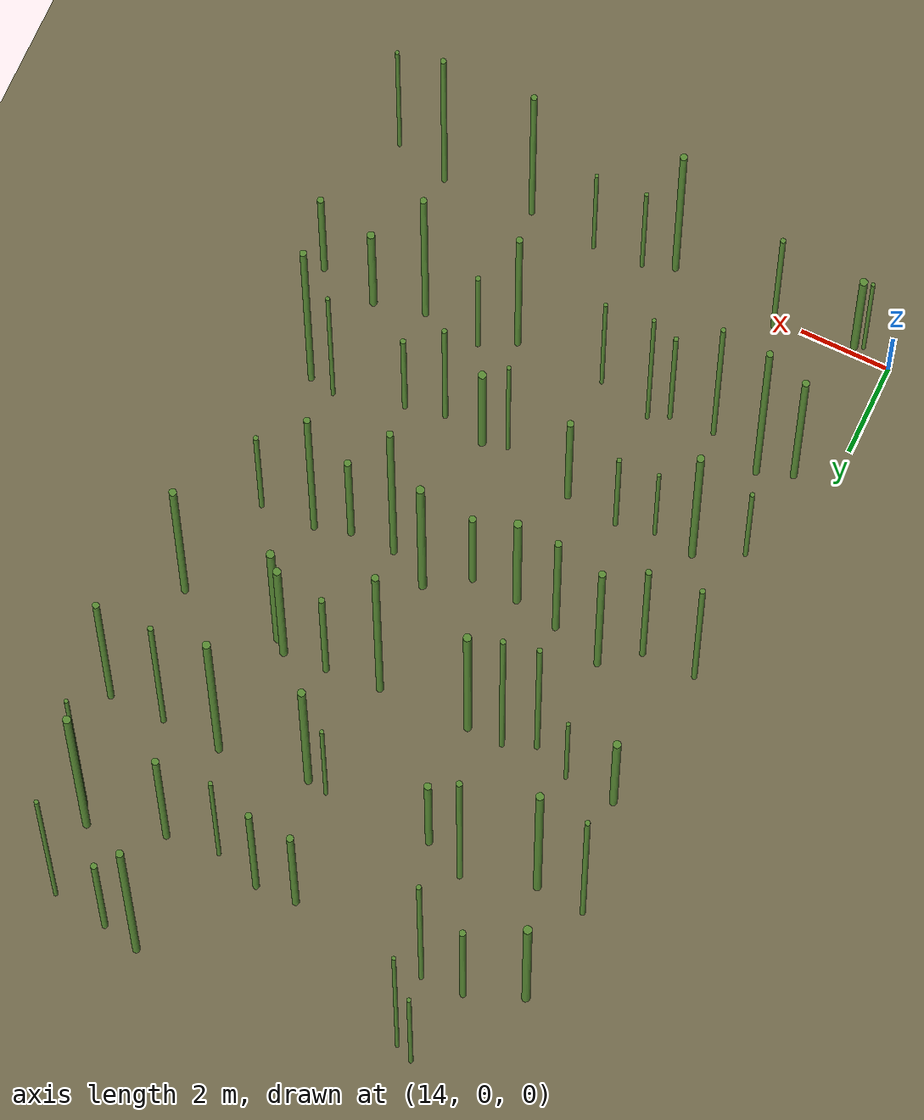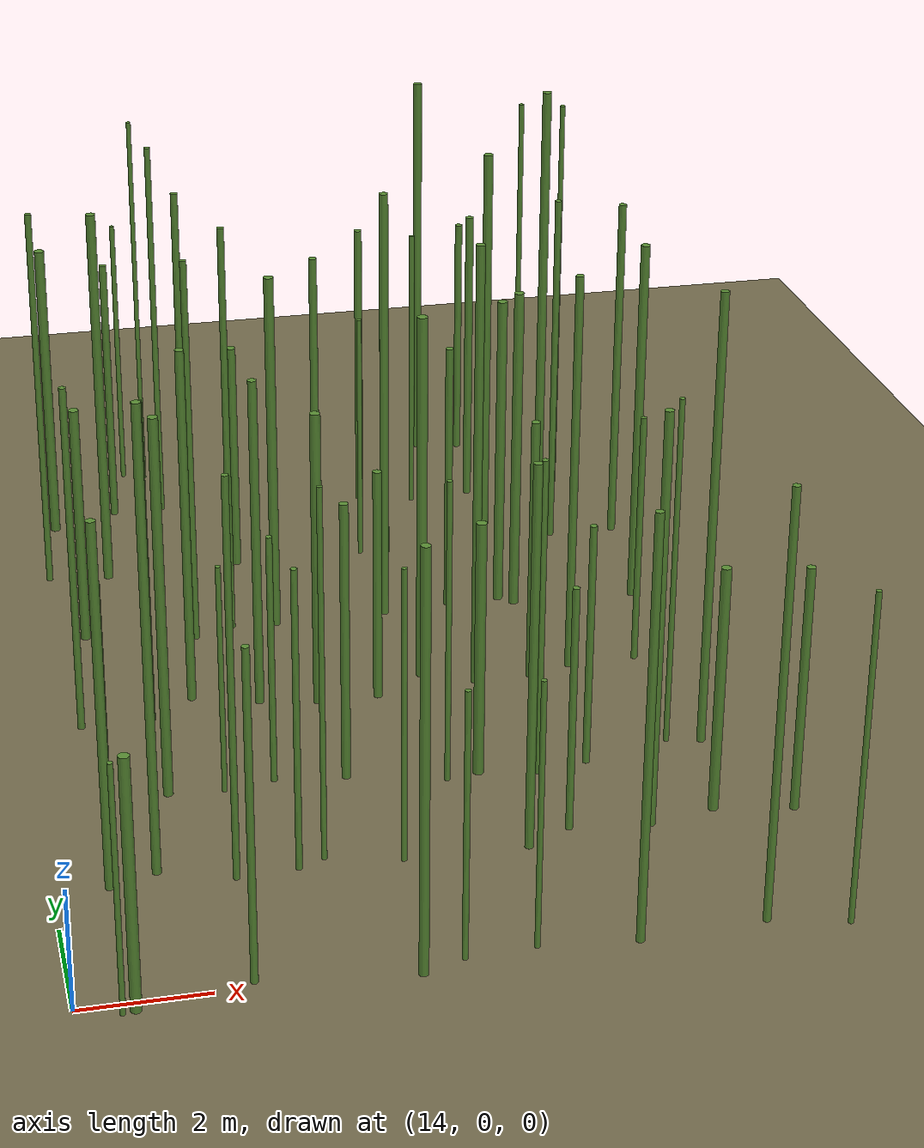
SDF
<sdf version="1.9">
 <world name="bamboo_field">
  <model name="ground_plane">
   <static>true</static>
   <link name="link">
    <collision name="collision">
     <geometry><plane><normal>0 0 1</normal><size>80.0 80.0</size></plane></geometry>
    </collision>
    <visual name="visual">
     <geometry><plane><normal>0 0 1</normal><size>80.0 80.0</size></plane></geometry>
     <material><diffuse>0.45 0.42 0.30 1</diffuse></material>
    </visual>
   </link>
  </model>
  <model name="bamboo_1054">
   <static>true</static>
   <pose>14.675035441849522 -0.22238168241106152 2.0362611913500244 0 0 0</pose>
   <link name="link">
    <collision name="collision">
     <geometry>
      <cylinder><radius>0.042352466806494155</radius><length>4.072522382700049</length></cylinder>
     </geometry>
    </collision>
    <visual name="visual">
     <geometry>
      <cylinder><radius>0.042352466806494155</radius><length>4.072522382700049</length></cylinder>
     </geometry>
     <material><diffuse>0.35 0.55 0.20 1</diffuse><specular>0.1 0.1 0.1 1</specular></material>
    </visual>
   </link>
  </model>
  <model name="bamboo_1055">
   <static>true</static>
   <pose>14.86640926337431 -0.17087807101086705 2.063940015536778 0 0 0</pose>
   <link name="link">
    <collision name="collision">
     <geometry>
      <cylinder><radius>0.08472287353257793</radius><length>4.127880031073556</length></cylinder>
     </geometry>
    </collision>
    <visual name="visual">
     <geometry>
      <cylinder><radius>0.08472287353257793</radius><length>4.127880031073556</length></cylinder>
     </geometry>
     <material><diffuse>0.35 0.55 0.20 1</diffuse><specular>0.1 0.1 0.1 1</specular></material>
    </visual>
   </link>
  </model>
  <model name="bamboo_1056">
   <static>true</static>
   <pose>16.59118022796607 0.14208715821829365 2.710481953164546 0 0 0</pose>
   <link name="link">
    <collision name="collision">
     <geometry>
      <cylinder><radius>0.0570162106994114</radius><length>5.420963906329092</length></cylinder>
     </geometry>
    </collision>
    <visual name="visual">
     <geometry>
      <cylinder><radius>0.0570162106994114</radius><length>5.420963906329092</length></cylinder>
     </geometry>
     <material><diffuse>0.35 0.55 0.20 1</diffuse><specular>0.1 0.1 0.1 1</specular></material>
    </visual>
   </link>
  </model>
  <model name="bamboo_1057">
   <static>true</static>
   <pose>18.990199973191725 -0.16583370027384847 3.4128098346355857 0 0 0</pose>
   <link name="link">
    <collision name="collision">
     <geometry>
      <cylinder><radius>0.07347429450755641</radius><length>6.8256196692711715</length></cylinder>
     </geometry>
    </collision>
    <visual name="visual">
     <geometry>
      <cylinder><radius>0.07347429450755641</radius><length>6.8256196692711715</length></cylinder>
     </geometry>
     <material><diffuse>0.35 0.55 0.20 1</diffuse><specular>0.1 0.1 0.1 1</specular></material>
    </visual>
   </link>
  </model>
  <model name="bamboo_1058">
   <static>true</static>
   <pose>19.651812540865578 0.075196985639568 2.2117837187894045 0 0 0</pose>
   <link name="link">
    <collision name="collision">
     <geometry>
      <cylinder><radius>0.045546542247630564</radius><length>4.423567437578809</length></cylinder>
     </geometry>
    </collision>
    <visual name="visual">
     <geometry>
      <cylinder><radius>0.045546542247630564</radius><length>4.423567437578809</length></cylinder>
     </geometry>
     <material><diffuse>0.35 0.55 0.20 1</diffuse><specular>0.1 0.1 0.1 1</specular></material>
    </visual>
   </link>
  </model>
  <model name="bamboo_1059">
   <static>true</static>
   <pose>20.74431343908246 0.1372962371102766 2.2108221675015436 0 0 0</pose>
   <link name="link">
    <collision name="collision">
     <geometry>
      <cylinder><radius>0.04209847186032896</radius><length>4.421644335003087</length></cylinder>
     </geometry>
    </collision>
    <visual name="visual">
     <geometry>
      <cylinder><radius>0.04209847186032896</radius><length>4.421644335003087</length></cylinder>
     </geometry>
     <material><diffuse>0.35 0.55 0.20 1</diffuse><specular>0.1 0.1 0.1 1</specular></material>
    </visual>
   </link>
  </model>
  <model name="bamboo_1060">
   <static>true</static>
   <pose>22.254114628335834 -0.019347315142034804 3.4651037882341846 0 0 0</pose>
   <link name="link">
    <collision name="collision">
     <geometry>
      <cylinder><radius>0.06529483083575628</radius><length>6.930207576468369</length></cylinder>
     </geometry>
    </collision>
    <visual name="visual">
     <geometry>
      <cylinder><radius>0.06529483083575628</radius><length>6.930207576468369</length></cylinder>
     </geometry>
     <material><diffuse>0.35 0.55 0.20 1</diffuse><specular>0.1 0.1 0.1 1</specular></material>
    </visual>
   </link>
  </model>
  <model name="bamboo_1061">
   <static>true</static>
   <pose>24.22961095311927 0.09408925619486419 3.5380663276700313 0 0 0</pose>
   <link name="link">
    <collision name="collision">
     <geometry>
      <cylinder><radius>0.060787491935945785</radius><length>7.0761326553400625</length></cylinder>
     </geometry>
    </collision>
    <visual name="visual">
     <geometry>
      <cylinder><radius>0.060787491935945785</radius><length>7.0761326553400625</length></cylinder>
     </geometry>
     <material><diffuse>0.35 0.55 0.20 1</diffuse><specular>0.1 0.1 0.1 1</specular></material>
    </visual>
   </link>
  </model>
  <model name="bamboo_1062">
   <static>true</static>
   <pose>25.422809384557777 -0.21986201029473135 2.744872714805599 0 0 0</pose>
   <link name="link">
    <collision name="collision">
     <geometry>
      <cylinder><radius>0.04426169308499084</radius><length>5.489745429611198</length></cylinder>
     </geometry>
    </collision>
    <visual name="visual">
     <geometry>
      <cylinder><radius>0.04426169308499084</radius><length>5.489745429611198</length></cylinder>
     </geometry>
     <material><diffuse>0.35 0.55 0.20 1</diffuse><specular>0.1 0.1 0.1 1</specular></material>
    </visual>
   </link>
  </model>
  <model name="bamboo_1122">
   <static>true</static>
   <pose>14.848293767728215 2.958294303006519 3.0658830346831163 0 0 0</pose>
   <link name="link">
    <collision name="collision">
     <geometry>
      <cylinder><radius>0.07464929076944829</radius><length>6.131766069366233</length></cylinder>
     </geometry>
    </collision>
    <visual name="visual">
     <geometry>
      <cylinder><radius>0.07464929076944829</radius><length>6.131766069366233</length></cylinder>
     </geometry>
     <material><diffuse>0.35 0.55 0.20 1</diffuse><specular>0.1 0.1 0.1 1</specular></material>
    </visual>
   </link>
  </model>
  <model name="bamboo_1123">
   <static>true</static>
   <pose>15.589123424910369 3.2233446494699023 3.8861484475438304 0 0 0</pose>
   <link name="link">
    <collision name="collision">
     <geometry>
      <cylinder><radius>0.07204831431549033</radius><length>7.772296895087661</length></cylinder>
     </geometry>
    </collision>
    <visual name="visual">
     <geometry>
      <cylinder><radius>0.07204831431549033</radius><length>7.772296895087661</length></cylinder>
     </geometry>
     <material><diffuse>0.35 0.55 0.20 1</diffuse><specular>0.1 0.1 0.1 1</specular></material>
    </visual>
   </link>
  </model>
  <model name="bamboo_1124">
   <static>true</static>
   <pose>16.75244944460679 2.8192434091030583 3.360346950863231 0 0 0</pose>
   <link name="link">
    <collision name="collision">
     <geometry>
      <cylinder><radius>0.05370177981321428</radius><length>6.720693901726462</length></cylinder>
     </geometry>
    </collision>
    <visual name="visual">
     <geometry>
      <cylinder><radius>0.05370177981321428</radius><length>6.720693901726462</length></cylinder>
     </geometry>
     <material><diffuse>0.35 0.55 0.20 1</diffuse><specular>0.1 0.1 0.1 1</specular></material>
    </visual>
   </link>
  </model>
  <model name="bamboo_1125">
   <static>true</static>
   <pose>17.723490869500907 2.8804161668425543 2.555866061425082 0 0 0</pose>
   <link name="link">
    <collision name="collision">
     <geometry>
      <cylinder><radius>0.051227410304160656</radius><length>5.111732122850164</length></cylinder>
     </geometry>
    </collision>
    <visual name="visual">
     <geometry>
      <cylinder><radius>0.051227410304160656</radius><length>5.111732122850164</length></cylinder>
     </geometry>
     <material><diffuse>0.35 0.55 0.20 1</diffuse><specular>0.1 0.1 0.1 1</specular></material>
    </visual>
   </link>
  </model>
  <model name="bamboo_1126">
   <static>true</static>
   <pose>18.149271491992454 3.082424044196656 3.143639233822717 0 0 0</pose>
   <link name="link">
    <collision name="collision">
     <geometry>
      <cylinder><radius>0.04409044507149549</radius><length>6.287278467645434</length></cylinder>
     </geometry>
    </collision>
    <visual name="visual">
     <geometry>
      <cylinder><radius>0.04409044507149549</radius><length>6.287278467645434</length></cylinder>
     </geometry>
     <material><diffuse>0.35 0.55 0.20 1</diffuse><specular>0.1 0.1 0.1 1</specular></material>
    </visual>
   </link>
  </model>
  <model name="bamboo_1127">
   <static>true</static>
   <pose>19.337886481907137 2.7837772192858017 2.499968323064995 0 0 0</pose>
   <link name="link">
    <collision name="collision">
     <geometry>
      <cylinder><radius>0.043722018345071084</radius><length>4.99993664612999</length></cylinder>
     </geometry>
    </collision>
    <visual name="visual">
     <geometry>
      <cylinder><radius>0.043722018345071084</radius><length>4.99993664612999</length></cylinder>
     </geometry>
     <material><diffuse>0.35 0.55 0.20 1</diffuse><specular>0.1 0.1 0.1 1</specular></material>
    </visual>
   </link>
  </model>
  <model name="bamboo_1128">
   <static>true</static>
   <pose>21.299145597251393 2.741499748525878 3.2525942166903734 0 0 0</pose>
   <link name="link">
    <collision name="collision">
     <geometry>
      <cylinder><radius>0.06962653852895681</radius><length>6.505188433380747</length></cylinder>
     </geometry>
    </collision>
    <visual name="visual">
     <geometry>
      <cylinder><radius>0.06962653852895681</radius><length>6.505188433380747</length></cylinder>
     </geometry>
     <material><diffuse>0.35 0.55 0.20 1</diffuse><specular>0.1 0.1 0.1 1</specular></material>
    </visual>
   </link>
  </model>
  <model name="bamboo_1129">
   <static>true</static>
   <pose>22.041782001921035 3.122090902570097 2.108865720356014 0 0 0</pose>
   <link name="link">
    <collision name="collision">
     <geometry>
      <cylinder><radius>0.05704009839613643</radius><length>4.217731440712028</length></cylinder>
     </geometry>
    </collision>
    <visual name="visual">
     <geometry>
      <cylinder><radius>0.05704009839613643</radius><length>4.217731440712028</length></cylinder>
     </geometry>
     <material><diffuse>0.35 0.55 0.20 1</diffuse><specular>0.1 0.1 0.1 1</specular></material>
    </visual>
   </link>
  </model>
  <model name="bamboo_1130">
   <static>true</static>
   <pose>23.323433244578872 2.9714672474122468 3.528197140927177 0 0 0</pose>
   <link name="link">
    <collision name="collision">
     <geometry>
      <cylinder><radius>0.07097832778041417</radius><length>7.056394281854354</length></cylinder>
     </geometry>
    </collision>
    <visual name="visual">
     <geometry>
      <cylinder><radius>0.07097832778041417</radius><length>7.056394281854354</length></cylinder>
     </geometry>
     <material><diffuse>0.35 0.55 0.20 1</diffuse><specular>0.1 0.1 0.1 1</specular></material>
    </visual>
   </link>
  </model>
  <model name="bamboo_1131">
   <static>true</static>
   <pose>24.42251551761251 3.209594170364575 2.1300564375914073 0 0 0</pose>
   <link name="link">
    <collision name="collision">
     <geometry>
      <cylinder><radius>0.08238460723063486</radius><length>4.260112875182815</length></cylinder>
     </geometry>
    </collision>
    <visual name="visual">
     <geometry>
      <cylinder><radius>0.08238460723063486</radius><length>4.260112875182815</length></cylinder>
     </geometry>
     <material><diffuse>0.35 0.55 0.20 1</diffuse><specular>0.1 0.1 0.1 1</specular></material>
    </visual>
   </link>
  </model>
  <model name="bamboo_1132">
   <static>true</static>
   <pose>25.68430294570522 2.9576937550548417 2.131580518213325 0 0 0</pose>
   <link name="link">
    <collision name="collision">
     <geometry>
      <cylinder><radius>0.07130926058882436</radius><length>4.26316103642665</length></cylinder>
     </geometry>
    </collision>
    <visual name="visual">
     <geometry>
      <cylinder><radius>0.07130926058882436</radius><length>4.26316103642665</length></cylinder>
     </geometry>
     <material><diffuse>0.35 0.55 0.20 1</diffuse><specular>0.1 0.1 0.1 1</specular></material>
    </visual>
   </link>
  </model>
  <model name="bamboo_1193">
   <static>true</static>
   <pose>15.049297759271537 4.95079533928831 2.0688896908266496 0 0 0</pose>
   <link name="link">
    <collision name="collision">
     <geometry>
      <cylinder><radius>0.05083362166375379</radius><length>4.137779381653299</length></cylinder>
     </geometry>
    </collision>
    <visual name="visual">
     <geometry>
      <cylinder><radius>0.05083362166375379</radius><length>4.137779381653299</length></cylinder>
     </geometry>
     <material><diffuse>0.35 0.55 0.20 1</diffuse><specular>0.1 0.1 0.1 1</specular></material>
    </visual>
   </link>
  </model>
  <model name="bamboo_1194">
   <static>true</static>
   <pose>16.056951116423594 5.42738570567057 3.282024378516375 0 0 0</pose>
   <link name="link">
    <collision name="collision">
     <geometry>
      <cylinder><radius>0.08057559129702838</radius><length>6.56404875703275</length></cylinder>
     </geometry>
    </collision>
    <visual name="visual">
     <geometry>
      <cylinder><radius>0.08057559129702838</radius><length>6.56404875703275</length></cylinder>
     </geometry>
     <material><diffuse>0.35 0.55 0.20 1</diffuse><specular>0.1 0.1 0.1 1</specular></material>
    </visual>
   </link>
  </model>
  <model name="bamboo_1195">
   <static>true</static>
   <pose>16.95239795544539 5.336458756506756 2.0093314654926164 0 0 0</pose>
   <link name="link">
    <collision name="collision">
     <geometry>
      <cylinder><radius>0.042620762809442485</radius><length>4.018662930985233</length></cylinder>
     </geometry>
    </collision>
    <visual name="visual">
     <geometry>
      <cylinder><radius>0.042620762809442485</radius><length>4.018662930985233</length></cylinder>
     </geometry>
     <material><diffuse>0.35 0.55 0.20 1</diffuse><specular>0.1 0.1 0.1 1</specular></material>
    </visual>
   </link>
  </model>
  <model name="bamboo_1196">
   <static>true</static>
   <pose>17.778417301081046 5.491982227064798 2.182772860169983 0 0 0</pose>
   <link name="link">
    <collision name="collision">
     <geometry>
      <cylinder><radius>0.05192701615392628</radius><length>4.365545720339966</length></cylinder>
     </geometry>
    </collision>
    <visual name="visual">
     <geometry>
      <cylinder><radius>0.05192701615392628</radius><length>4.365545720339966</length></cylinder>
     </geometry>
     <material><diffuse>0.35 0.55 0.20 1</diffuse><specular>0.1 0.1 0.1 1</specular></material>
    </visual>
   </link>
  </model>
  <model name="bamboo_1197">
   <static>true</static>
   <pose>18.935686287010178 5.3573257051974155 2.4411357039026207 0 0 0</pose>
   <link name="link">
    <collision name="collision">
     <geometry>
      <cylinder><radius>0.07344747277467381</radius><length>4.882271407805241</length></cylinder>
     </geometry>
    </collision>
    <visual name="visual">
     <geometry>
      <cylinder><radius>0.07344747277467381</radius><length>4.882271407805241</length></cylinder>
     </geometry>
     <material><diffuse>0.35 0.55 0.20 1</diffuse><specular>0.1 0.1 0.1 1</specular></material>
    </visual>
   </link>
  </model>
  <model name="bamboo_1198">
   <static>true</static>
   <pose>20.5105230973485 4.932162064761644 2.654282932321423 0 0 0</pose>
   <link name="link">
    <collision name="collision">
     <geometry>
      <cylinder><radius>0.04538419142947507</radius><length>5.308565864642846</length></cylinder>
     </geometry>
    </collision>
    <visual name="visual">
     <geometry>
      <cylinder><radius>0.04538419142947507</radius><length>5.308565864642846</length></cylinder>
     </geometry>
     <material><diffuse>0.35 0.55 0.20 1</diffuse><specular>0.1 0.1 0.1 1</specular></material>
    </visual>
   </link>
  </model>
  <model name="bamboo_1199">
   <static>true</static>
   <pose>21.0495789321269 5.049082217731944 2.2416079227985164 0 0 0</pose>
   <link name="link">
    <collision name="collision">
     <geometry>
      <cylinder><radius>0.0869461613997371</radius><length>4.483215845597033</length></cylinder>
     </geometry>
    </collision>
    <visual name="visual">
     <geometry>
      <cylinder><radius>0.0869461613997371</radius><length>4.483215845597033</length></cylinder>
     </geometry>
     <material><diffuse>0.35 0.55 0.20 1</diffuse><specular>0.1 0.1 0.1 1</specular></material>
    </visual>
   </link>
  </model>
  <model name="bamboo_1200">
   <static>true</static>
   <pose>21.990524716769784 4.8456901884332195 2.7783733191008557 0 0 0</pose>
   <link name="link">
    <collision name="collision">
     <geometry>
      <cylinder><radius>0.05581201106756231</radius><length>5.556746638201711</length></cylinder>
     </geometry>
    </collision>
    <visual name="visual">
     <geometry>
      <cylinder><radius>0.05581201106756231</radius><length>5.556746638201711</length></cylinder>
     </geometry>
     <material><diffuse>0.35 0.55 0.20 1</diffuse><specular>0.1 0.1 0.1 1</specular></material>
    </visual>
   </link>
  </model>
  <model name="bamboo_1201">
   <static>true</static>
   <pose>22.848408119810877 5.010552763641678 2.1346625370600827 0 0 0</pose>
   <link name="link">
    <collision name="collision">
     <geometry>
      <cylinder><radius>0.058448998050368926</radius><length>4.269325074120165</length></cylinder>
     </geometry>
    </collision>
    <visual name="visual">
     <geometry>
      <cylinder><radius>0.058448998050368926</radius><length>4.269325074120165</length></cylinder>
     </geometry>
     <material><diffuse>0.35 0.55 0.20 1</diffuse><specular>0.1 0.1 0.1 1</specular></material>
    </visual>
   </link>
  </model>
  <model name="bamboo_1202">
   <static>true</static>
   <pose>24.32833506103893 5.394804313192285 3.0723630605825747 0 0 0</pose>
   <link name="link">
    <collision name="collision">
     <geometry>
      <cylinder><radius>0.04509067949374434</radius><length>6.144726121165149</length></cylinder>
     </geometry>
    </collision>
    <visual name="visual">
     <geometry>
      <cylinder><radius>0.04509067949374434</radius><length>6.144726121165149</length></cylinder>
     </geometry>
     <material><diffuse>0.35 0.55 0.20 1</diffuse><specular>0.1 0.1 0.1 1</specular></material>
    </visual>
   </link>
  </model>
  <model name="bamboo_1203">
   <static>true</static>
   <pose>24.89096756013186 5.274009155258631 3.9628317897151994 0 0 0</pose>
   <link name="link">
    <collision name="collision">
     <geometry>
      <cylinder><radius>0.06999335725767697</radius><length>7.925663579430399</length></cylinder>
     </geometry>
    </collision>
    <visual name="visual">
     <geometry>
      <cylinder><radius>0.06999335725767697</radius><length>7.925663579430399</length></cylinder>
     </geometry>
     <material><diffuse>0.35 0.55 0.20 1</diffuse><specular>0.1 0.1 0.1 1</specular></material>
    </visual>
   </link>
  </model>
  <model name="bamboo_1257">
   <static>true</static>
   <pose>14.916359963971969 7.815151336982459 3.0765858866626328 0 0 0</pose>
   <link name="link">
    <collision name="collision">
     <geometry>
      <cylinder><radius>0.059765619191970126</radius><length>6.1531717733252655</length></cylinder>
     </geometry>
    </collision>
    <visual name="visual">
     <geometry>
      <cylinder><radius>0.059765619191970126</radius><length>6.1531717733252655</length></cylinder>
     </geometry>
     <material><diffuse>0.35 0.55 0.20 1</diffuse><specular>0.1 0.1 0.1 1</specular></material>
    </visual>
   </link>
  </model>
  <model name="bamboo_1258">
   <static>true</static>
   <pose>16.092119777876402 7.815970275384086 2.91156906109192 0 0 0</pose>
   <link name="link">
    <collision name="collision">
     <geometry>
      <cylinder><radius>0.06499163325130228</radius><length>5.82313812218384</length></cylinder>
     </geometry>
    </collision>
    <visual name="visual">
     <geometry>
      <cylinder><radius>0.06499163325130228</radius><length>5.82313812218384</length></cylinder>
     </geometry>
     <material><diffuse>0.35 0.55 0.20 1</diffuse><specular>0.1 0.1 0.1 1</specular></material>
    </visual>
   </link>
  </model>
  <model name="bamboo_1259">
   <static>true</static>
   <pose>16.85345826881659 8.407095364754383 3.1977606165429853 0 0 0</pose>
   <link name="link">
    <collision name="collision">
     <geometry>
      <cylinder><radius>0.07514834047643239</radius><length>6.3955212330859705</length></cylinder>
     </geometry>
    </collision>
    <visual name="visual">
     <geometry>
      <cylinder><radius>0.07514834047643239</radius><length>6.3955212330859705</length></cylinder>
     </geometry>
     <material><diffuse>0.35 0.55 0.20 1</diffuse><specular>0.1 0.1 0.1 1</specular></material>
    </visual>
   </link>
  </model>
  <model name="bamboo_1260">
   <static>true</static>
   <pose>17.96670098820393 8.060378653993391 2.9565654938083448 0 0 0</pose>
   <link name="link">
    <collision name="collision">
     <geometry>
      <cylinder><radius>0.07532611339314726</radius><length>5.9131309876166895</length></cylinder>
     </geometry>
    </collision>
    <visual name="visual">
     <geometry>
      <cylinder><radius>0.07532611339314726</radius><length>5.9131309876166895</length></cylinder>
     </geometry>
     <material><diffuse>0.35 0.55 0.20 1</diffuse><specular>0.1 0.1 0.1 1</specular></material>
    </visual>
   </link>
  </model>
  <model name="bamboo_1261">
   <static>true</static>
   <pose>18.947795351813937 7.861289946349661 2.6662890933856698 0 0 0</pose>
   <link name="link">
    <collision name="collision">
     <geometry>
      <cylinder><radius>0.08905713975809892</radius><length>5.3325781867713395</length></cylinder>
     </geometry>
    </collision>
    <visual name="visual">
     <geometry>
      <cylinder><radius>0.08905713975809892</radius><length>5.3325781867713395</length></cylinder>
     </geometry>
     <material><diffuse>0.35 0.55 0.20 1</diffuse><specular>0.1 0.1 0.1 1</specular></material>
    </visual>
   </link>
  </model>
  <model name="bamboo_1262">
   <static>true</static>
   <pose>19.96714163381376 7.839174949037951 2.105132608460752 0 0 0</pose>
   <link name="link">
    <collision name="collision">
     <geometry>
      <cylinder><radius>0.07502037068297177</radius><length>4.210265216921504</length></cylinder>
     </geometry>
    </collision>
    <visual name="visual">
     <geometry>
      <cylinder><radius>0.07502037068297177</radius><length>4.210265216921504</length></cylinder>
     </geometry>
     <material><diffuse>0.35 0.55 0.20 1</diffuse><specular>0.1 0.1 0.1 1</specular></material>
    </visual>
   </link>
  </model>
  <model name="bamboo_1263">
   <static>true</static>
   <pose>20.850303939758668 8.407605036867713 3.3185006218012623 0 0 0</pose>
   <link name="link">
    <collision name="collision">
     <geometry>
      <cylinder><radius>0.08921947710775291</radius><length>6.6370012436025245</length></cylinder>
     </geometry>
    </collision>
    <visual name="visual">
     <geometry>
      <cylinder><radius>0.08921947710775291</radius><length>6.6370012436025245</length></cylinder>
     </geometry>
     <material><diffuse>0.35 0.55 0.20 1</diffuse><specular>0.1 0.1 0.1 1</specular></material>
    </visual>
   </link>
  </model>
  <model name="bamboo_1264">
   <static>true</static>
   <pose>21.705918260837276 7.987604952640241 3.980628599946307 0 0 0</pose>
   <link name="link">
    <collision name="collision">
     <geometry>
      <cylinder><radius>0.0738949343090585</radius><length>7.961257199892614</length></cylinder>
     </geometry>
    </collision>
    <visual name="visual">
     <geometry>
      <cylinder><radius>0.0738949343090585</radius><length>7.961257199892614</length></cylinder>
     </geometry>
     <material><diffuse>0.35 0.55 0.20 1</diffuse><specular>0.1 0.1 0.1 1</specular></material>
    </visual>
   </link>
  </model>
  <model name="bamboo_1265">
   <static>true</static>
   <pose>22.686032658991554 7.989501504024626 2.3901843533085088 0 0 0</pose>
   <link name="link">
    <collision name="collision">
     <geometry>
      <cylinder><radius>0.07481881578380756</radius><length>4.7803687066170175</length></cylinder>
     </geometry>
    </collision>
    <visual name="visual">
     <geometry>
      <cylinder><radius>0.07481881578380756</radius><length>4.7803687066170175</length></cylinder>
     </geometry>
     <material><diffuse>0.35 0.55 0.20 1</diffuse><specular>0.1 0.1 0.1 1</specular></material>
    </visual>
   </link>
  </model>
  <model name="bamboo_1266">
   <static>true</static>
   <pose>23.433883182880347 8.210572058465305 3.610143572898556 0 0 0</pose>
   <link name="link">
    <collision name="collision">
     <geometry>
      <cylinder><radius>0.06901918398807028</radius><length>7.220287145797112</length></cylinder>
     </geometry>
    </collision>
    <visual name="visual">
     <geometry>
      <cylinder><radius>0.06901918398807028</radius><length>7.220287145797112</length></cylinder>
     </geometry>
     <material><diffuse>0.35 0.55 0.20 1</diffuse><specular>0.1 0.1 0.1 1</specular></material>
    </visual>
   </link>
  </model>
  <model name="bamboo_1267">
   <static>true</static>
   <pose>24.629749293409763 8.237728548732422 2.2896457643772115 0 0 0</pose>
   <link name="link">
    <collision name="collision">
     <geometry>
      <cylinder><radius>0.05455407846615392</radius><length>4.579291528754423</length></cylinder>
     </geometry>
    </collision>
    <visual name="visual">
     <geometry>
      <cylinder><radius>0.05455407846615392</radius><length>4.579291528754423</length></cylinder>
     </geometry>
     <material><diffuse>0.35 0.55 0.20 1</diffuse><specular>0.1 0.1 0.1 1</specular></material>
    </visual>
   </link>
  </model>
  <model name="bamboo_1328">
   <static>true</static>
   <pose>15.314192716654086 10.961954492229465 2.2015233998135852 0 0 0</pose>
   <link name="link">
    <collision name="collision">
     <geometry>
      <cylinder><radius>0.085424098747418</radius><length>4.4030467996271705</length></cylinder>
     </geometry>
    </collision>
    <visual name="visual">
     <geometry>
      <cylinder><radius>0.085424098747418</radius><length>4.4030467996271705</length></cylinder>
     </geometry>
     <material><diffuse>0.35 0.55 0.20 1</diffuse><specular>0.1 0.1 0.1 1</specular></material>
    </visual>
   </link>
  </model>
  <model name="bamboo_1329">
   <static>true</static>
   <pose>16.416474970280472 10.901506751282122 2.02732316677215 0 0 0</pose>
   <link name="link">
    <collision name="collision">
     <geometry><cylinder><radius>0.04484436104779971</radius><length>4.0546463335443</length></cylinder></geometry>
    </collision>
    <visual name="visual">
     <geometry><cylinder><radius>0.04484436104779971</radius><length>4.0546463335443</length></cylinder></geometry>
     <material><diffuse>0.35 0.55 0.20 1</diffuse><specular>0.1 0.1 0.1 1</specular></material>
    </visual>
   </link>
  </model>
  <model name="bamboo_1330">
   <static>true</static>
   <pose>17.232925349534415 10.558239361713145 3.557616615130172 0 0 0</pose>
   <link name="link">
    <collision name="collision">
     <geometry>
      <cylinder><radius>0.05806924817820341</radius><length>7.115233230260344</length></cylinder>
     </geometry>
    </collision>
    <visual name="visual">
     <geometry>
      <cylinder><radius>0.05806924817820341</radius><length>7.115233230260344</length></cylinder>
     </geometry>
     <material><diffuse>0.35 0.55 0.20 1</diffuse><specular>0.1 0.1 0.1 1</specular></material>
    </visual>
   </link>
  </model>
  <model name="bamboo_1331">
   <static>true</static>
   <pose>17.91416102600012 10.817935967920844 3.774387599622689 0 0 0</pose>
   <link name="link">
    <collision name="collision">
     <geometry>
      <cylinder><radius>0.05920246783168284</radius><length>7.548775199245378</length></cylinder>
     </geometry>
    </collision>
    <visual name="visual">
     <geometry>
      <cylinder><radius>0.05920246783168284</radius><length>7.548775199245378</length></cylinder>
     </geometry>
     <material><diffuse>0.35 0.55 0.20 1</diffuse><specular>0.1 0.1 0.1 1</specular></material>
    </visual>
   </link>
  </model>
  <model name="bamboo_1332">
   <static>true</static>
   <pose>18.704266501565716 10.791386799920877 3.308710319063204 0 0 0</pose>
   <link name="link">
    <collision name="collision">
     <geometry>
      <cylinder><radius>0.08560884158463827</radius><length>6.617420638126408</length></cylinder>
     </geometry>
    </collision>
    <visual name="visual">
     <geometry>
      <cylinder><radius>0.08560884158463827</radius><length>6.617420638126408</length></cylinder>
     </geometry>
     <material><diffuse>0.35 0.55 0.20 1</diffuse><specular>0.1 0.1 0.1 1</specular></material>
    </visual>
   </link>
  </model>
  <model name="bamboo_1333">
   <static>true</static>
   <pose>20.701194228024477 10.80266338847654 3.9792892301229834 0 0 0</pose>
   <link name="link">
    <collision name="collision">
     <geometry>
      <cylinder><radius>0.0762675329574192</radius><length>7.958578460245967</length></cylinder>
     </geometry>
    </collision>
    <visual name="visual">
     <geometry>
      <cylinder><radius>0.0762675329574192</radius><length>7.958578460245967</length></cylinder>
     </geometry>
     <material><diffuse>0.35 0.55 0.20 1</diffuse><specular>0.1 0.1 0.1 1</specular></material>
    </visual>
   </link>
  </model>
  <model name="bamboo_1334">
   <static>true</static>
   <pose>21.891272028396653 10.895531568190407 2.5050510151920715 0 0 0</pose>
   <link name="link">
    <collision name="collision">
     <geometry>
      <cylinder><radius>0.06752478409990784</radius><length>5.010102030384143</length></cylinder>
     </geometry>
    </collision>
    <visual name="visual">
     <geometry>
      <cylinder><radius>0.06752478409990784</radius><length>5.010102030384143</length></cylinder>
     </geometry>
     <material><diffuse>0.35 0.55 0.20 1</diffuse><specular>0.1 0.1 0.1 1</specular></material>
    </visual>
   </link>
  </model>
  <model name="bamboo_1335">
   <static>true</static>
   <pose>22.842173339844795 10.935719187913984 2.8969644401947354 0 0 0</pose>
   <link name="link">
    <collision name="collision">
     <geometry>
      <cylinder><radius>0.08474565139636844</radius><length>5.793928880389471</length></cylinder>
     </geometry>
    </collision>
    <visual name="visual">
     <geometry>
      <cylinder><radius>0.08474565139636844</radius><length>5.793928880389471</length></cylinder>
     </geometry>
     <material><diffuse>0.35 0.55 0.20 1</diffuse><specular>0.1 0.1 0.1 1</specular></material>
    </visual>
   </link>
  </model>
  <model name="bamboo_1336">
   <static>true</static>
   <pose>23.08244105490985 10.71753232579258 3.007738855345326 0 0 0</pose>
   <link name="link">
    <collision name="collision">
     <geometry>
      <cylinder><radius>0.08656661635355808</radius><length>6.015477710690652</length></cylinder>
     </geometry>
    </collision>
    <visual name="visual">
     <geometry>
      <cylinder><radius>0.08656661635355808</radius><length>6.015477710690652</length></cylinder>
     </geometry>
     <material><diffuse>0.35 0.55 0.20 1</diffuse><specular>0.1 0.1 0.1 1</specular></material>
    </visual>
   </link>
  </model>
  <model name="bamboo_1337">
   <static>true</static>
   <pose>25.282489845205532 10.576370441832022 3.3876066683261232 0 0 0</pose>
   <link name="link">
    <collision name="collision">
     <geometry>
      <cylinder><radius>0.07971951900887266</radius><length>6.7752133366522465</length></cylinder>
     </geometry>
    </collision>
    <visual name="visual">
     <geometry>
      <cylinder><radius>0.07971951900887266</radius><length>6.7752133366522465</length></cylinder>
     </geometry>
     <material><diffuse>0.35 0.55 0.20 1</diffuse><specular>0.1 0.1 0.1 1</specular></material>
    </visual>
   </link>
  </model>
  <model name="bamboo_1390">
   <static>true</static>
   <pose>14.899362304978842 13.371137533047534 3.5707037170409794 0 0 0</pose>
   <link name="link">
    <collision name="collision">
     <geometry>
      <cylinder><radius>0.05707076446990676</radius><length>7.141407434081959</length></cylinder>
     </geometry>
    </collision>
    <visual name="visual">
     <geometry>
      <cylinder><radius>0.05707076446990676</radius><length>7.141407434081959</length></cylinder>
     </geometry>
     <material><diffuse>0.35 0.55 0.20 1</diffuse><specular>0.1 0.1 0.1 1</specular></material>
    </visual>
   </link>
  </model>
  <model name="bamboo_1391">
   <static>true</static>
   <pose>15.975772820137054 13.265090532769575 3.548350001616381 0 0 0</pose>
   <link name="link">
    <collision name="collision">
     <geometry>
      <cylinder><radius>0.08453399654953274</radius><length>7.096700003232762</length></cylinder>
     </geometry>
    </collision>
    <visual name="visual">
     <geometry>
      <cylinder><radius>0.08453399654953274</radius><length>7.096700003232762</length></cylinder>
     </geometry>
     <material><diffuse>0.35 0.55 0.20 1</diffuse><specular>0.1 0.1 0.1 1</specular></material>
    </visual>
   </link>
  </model>
  <model name="bamboo_1392">
   <static>true</static>
   <pose>17.50938005075979 13.728236320178322 3.6094528885922097 0 0 0</pose>
   <link name="link">
    <collision name="collision">
     <geometry>
      <cylinder><radius>0.06487614121191428</radius><length>7.218905777184419</length></cylinder>
     </geometry>
    </collision>
    <visual name="visual">
     <geometry>
      <cylinder><radius>0.06487614121191428</radius><length>7.218905777184419</length></cylinder>
     </geometry>
     <material><diffuse>0.35 0.55 0.20 1</diffuse><specular>0.1 0.1 0.1 1</specular></material>
    </visual>
   </link>
  </model>
  <model name="bamboo_1393">
   <static>true</static>
   <pose>18.394278502691247 13.338519174184931 2.174335367961411 0 0 0</pose>
   <link name="link">
    <collision name="collision">
     <geometry>
      <cylinder><radius>0.07907227586773591</radius><length>4.348670735922822</length></cylinder>
     </geometry>
    </collision>
    <visual name="visual">
     <geometry>
      <cylinder><radius>0.07907227586773591</radius><length>4.348670735922822</length></cylinder>
     </geometry>
     <material><diffuse>0.35 0.55 0.20 1</diffuse><specular>0.1 0.1 0.1 1</specular></material>
    </visual>
   </link>
  </model>
  <model name="bamboo_1394">
   <static>true</static>
   <pose>20.754426381613776 13.2994769537079 2.3583725051679467 0 0 0</pose>
   <link name="link">
    <collision name="collision">
     <geometry>
      <cylinder><radius>0.044461462077175794</radius><length>4.716745010335893</length></cylinder>
     </geometry>
    </collision>
    <visual name="visual">
     <geometry>
      <cylinder><radius>0.044461462077175794</radius><length>4.716745010335893</length></cylinder>
     </geometry>
     <material><diffuse>0.35 0.55 0.20 1</diffuse><specular>0.1 0.1 0.1 1</specular></material>
    </visual>
   </link>
  </model>
  <model name="bamboo_1395">
   <static>true</static>
   <pose>21.201685476379225 13.205692441053031 3.3005841661119577 0 0 0</pose>
   <link name="link">
    <collision name="collision">
     <geometry>
      <cylinder><radius>0.08383289346175096</radius><length>6.601168332223915</length></cylinder>
     </geometry>
    </collision>
    <visual name="visual">
     <geometry>
      <cylinder><radius>0.08383289346175096</radius><length>6.601168332223915</length></cylinder>
     </geometry>
     <material><diffuse>0.35 0.55 0.20 1</diffuse><specular>0.1 0.1 0.1 1</specular></material>
    </visual>
   </link>
  </model>
  <model name="bamboo_1396">
   <static>true</static>
   <pose>23.16475605495922 13.375628670181861 3.8342802327958463 0 0 0</pose>
   <link name="link">
    <collision name="collision">
     <geometry>
      <cylinder><radius>0.08285004795330893</radius><length>7.668560465591693</length></cylinder>
     </geometry>
    </collision>
    <visual name="visual">
     <geometry>
      <cylinder><radius>0.08285004795330893</radius><length>7.668560465591693</length></cylinder>
     </geometry>
     <material><diffuse>0.35 0.55 0.20 1</diffuse><specular>0.1 0.1 0.1 1</specular></material>
    </visual>
   </link>
  </model>
  <model name="bamboo_1397">
   <static>true</static>
   <pose>24.466561046445424 13.302895286969255 3.364401793676529 0 0 0</pose>
   <link name="link">
    <collision name="collision">
     <geometry>
      <cylinder><radius>0.058684154780019274</radius><length>6.728803587353058</length></cylinder>
     </geometry>
    </collision>
    <visual name="visual">
     <geometry>
      <cylinder><radius>0.058684154780019274</radius><length>6.728803587353058</length></cylinder>
     </geometry>
     <material><diffuse>0.35 0.55 0.20 1</diffuse><specular>0.1 0.1 0.1 1</specular></material>
    </visual>
   </link>
  </model>
  <model name="bamboo_1398">
   <static>true</static>
   <pose>25.681345720306453 13.2902878337693 3.2877335705914894 0 0 0</pose>
   <link name="link">
    <collision name="collision">
     <geometry>
      <cylinder><radius>0.07103068619125769</radius><length>6.575467141182979</length></cylinder>
     </geometry>
    </collision>
    <visual name="visual">
     <geometry>
      <cylinder><radius>0.07103068619125769</radius><length>6.575467141182979</length></cylinder>
     </geometry>
     <material><diffuse>0.35 0.55 0.20 1</diffuse><specular>0.1 0.1 0.1 1</specular></material>
    </visual>
   </link>
  </model>
  <model name="bamboo_1453">
   <static>true</static>
   <pose>15.200019262561687 15.48954517629738 2.8424744921812266 0 0 0</pose>
   <link name="link">
    <collision name="collision">
     <geometry>
      <cylinder><radius>0.08951298582345822</radius><length>5.684948984362453</length></cylinder>
     </geometry>
    </collision>
    <visual name="visual">
     <geometry>
      <cylinder><radius>0.08951298582345822</radius><length>5.684948984362453</length></cylinder>
     </geometry>
     <material><diffuse>0.35 0.55 0.20 1</diffuse><specular>0.1 0.1 0.1 1</specular></material>
    </visual>
   </link>
  </model>
  <model name="bamboo_1454">
   <static>true</static>
   <pose>16.39447091702445 15.969019512817438 2.5700738283669393 0 0 0</pose>
   <link name="link">
    <collision name="collision">
     <geometry>
      <cylinder><radius>0.0688206908931094</radius><length>5.140147656733879</length></cylinder>
     </geometry>
    </collision>
    <visual name="visual">
     <geometry>
      <cylinder><radius>0.0688206908931094</radius><length>5.140147656733879</length></cylinder>
     </geometry>
     <material><diffuse>0.35 0.55 0.20 1</diffuse><specular>0.1 0.1 0.1 1</specular></material>
    </visual>
   </link>
  </model>
  <model name="bamboo_1455">
   <static>true</static>
   <pose>17.32105375025085 15.996828033539796 3.6832857276030415 0 0 0</pose>
   <link name="link">
    <collision name="collision">
     <geometry>
      <cylinder><radius>0.05421829094404654</radius><length>7.366571455206083</length></cylinder>
     </geometry>
    </collision>
    <visual name="visual">
     <geometry>
      <cylinder><radius>0.05421829094404654</radius><length>7.366571455206083</length></cylinder>
     </geometry>
     <material><diffuse>0.35 0.55 0.20 1</diffuse><specular>0.1 0.1 0.1 1</specular></material>
    </visual>
   </link>
  </model>
  <model name="bamboo_1456">
   <static>true</static>
   <pose>20.329842779712187 15.649988405785184 2.549347092467392 0 0 0</pose>
   <link name="link">
    <collision name="collision">
     <geometry>
      <cylinder><radius>0.07616268347985977</radius><length>5.098694184934784</length></cylinder>
     </geometry>
    </collision>
    <visual name="visual">
     <geometry>
      <cylinder><radius>0.07616268347985977</radius><length>5.098694184934784</length></cylinder>
     </geometry>
     <material><diffuse>0.35 0.55 0.20 1</diffuse><specular>0.1 0.1 0.1 1</specular></material>
    </visual>
   </link>
  </model>
  <model name="bamboo_1457">
   <static>true</static>
   <pose>21.212358121922012 15.687954584809601 2.786654983437714 0 0 0</pose>
   <link name="link">
    <collision name="collision">
     <geometry>
      <cylinder><radius>0.0706160323497179</radius><length>5.573309966875428</length></cylinder>
     </geometry>
    </collision>
    <visual name="visual">
     <geometry>
      <cylinder><radius>0.0706160323497179</radius><length>5.573309966875428</length></cylinder>
     </geometry>
     <material><diffuse>0.35 0.55 0.20 1</diffuse><specular>0.1 0.1 0.1 1</specular></material>
    </visual>
   </link>
  </model>
  <model name="bamboo_1458">
   <static>true</static>
   <pose>22.196891090916857 15.390249093262868 2.747812165881749 0 0 0</pose>
   <link name="link">
    <collision name="collision">
     <geometry>
      <cylinder><radius>0.04607064733023779</radius><length>5.495624331763498</length></cylinder>
     </geometry>
    </collision>
    <visual name="visual">
     <geometry>
      <cylinder><radius>0.04607064733023779</radius><length>5.495624331763498</length></cylinder>
     </geometry>
     <material><diffuse>0.35 0.55 0.20 1</diffuse><specular>0.1 0.1 0.1 1</specular></material>
    </visual>
   </link>
  </model>
  <model name="bamboo_1459">
   <static>true</static>
   <pose>23.344629179713074 15.503559151305764 2.871364924704153 0 0 0</pose>
   <link name="link">
    <collision name="collision">
     <geometry>
      <cylinder><radius>0.0743799455926766</radius><length>5.742729849408306</length></cylinder>
     </geometry>
    </collision>
    <visual name="visual">
     <geometry>
      <cylinder><radius>0.0743799455926766</radius><length>5.742729849408306</length></cylinder>
     </geometry>
     <material><diffuse>0.35 0.55 0.20 1</diffuse><specular>0.1 0.1 0.1 1</specular></material>
    </visual>
   </link>
  </model>
  <model name="bamboo_1460">
   <static>true</static>
   <pose>24.940283006047178 15.977357776699483 3.979130059554299 0 0 0</pose>
   <link name="link">
    <collision name="collision">
     <geometry>
      <cylinder><radius>0.08514402916191458</radius><length>7.958260119108598</length></cylinder>
     </geometry>
    </collision>
    <visual name="visual">
     <geometry>
      <cylinder><radius>0.08514402916191458</radius><length>7.958260119108598</length></cylinder>
     </geometry>
     <material><diffuse>0.35 0.55 0.20 1</diffuse><specular>0.1 0.1 0.1 1</specular></material>
    </visual>
   </link>
  </model>
  <model name="bamboo_1461">
   <static>true</static>
   <pose>25.142810355907905 15.600277647946308 3.8942897216124845 0 0 0</pose>
   <link name="link">
    <collision name="collision">
     <geometry>
      <cylinder><radius>0.04554017985165245</radius><length>7.788579443224969</length></cylinder>
     </geometry>
    </collision>
    <visual name="visual">
     <geometry>
      <cylinder><radius>0.04554017985165245</radius><length>7.788579443224969</length></cylinder>
     </geometry>
     <material><diffuse>0.35 0.55 0.20 1</diffuse><specular>0.1 0.1 0.1 1</specular></material>
    </visual>
   </link>
  </model>
  <model name="bamboo_1523">
   <static>true</static>
   <pose>16.766470006404493 17.682979822429726 2.648153224421324 0 0 0</pose>
   <link name="link">
    <collision name="collision">
     <geometry>
      <cylinder><radius>0.04647109847432699</radius><length>5.296306448842648</length></cylinder>
     </geometry>
    </collision>
    <visual name="visual">
     <geometry>
      <cylinder><radius>0.04647109847432699</radius><length>5.296306448842648</length></cylinder>
     </geometry>
     <material><diffuse>0.35 0.55 0.20 1</diffuse><specular>0.1 0.1 0.1 1</specular></material>
    </visual>
   </link>
  </model>
  <model name="bamboo_1524">
   <static>true</static>
   <pose>17.15624957030562 17.506891477055092 3.7040623684656246 0 0 0</pose>
   <link name="link">
    <collision name="collision">
     <geometry>
      <cylinder><radius>0.042246456604272814</radius><length>7.408124736931249</length></cylinder>
     </geometry>
    </collision>
    <visual name="visual">
     <geometry>
      <cylinder><radius>0.042246456604272814</radius><length>7.408124736931249</length></cylinder>
     </geometry>
     <material><diffuse>0.35 0.55 0.20 1</diffuse><specular>0.1 0.1 0.1 1</specular></material>
    </visual>
   </link>
  </model>
  <model name="bamboo_1527">
   <static>true</static>
   <pose>22.86202767698041 17.928421176536922 3.8471016909788136 0 0 0</pose>
   <link name="link">
    <collision name="collision">
     <geometry>
      <cylinder><radius>0.08203396775925884</radius><length>7.694203381957627</length></cylinder>
     </geometry>
    </collision>
    <visual name="visual">
     <geometry>
      <cylinder><radius>0.08203396775925884</radius><length>7.694203381957627</length></cylinder>
     </geometry>
     <material><diffuse>0.35 0.55 0.20 1</diffuse><specular>0.1 0.1 0.1 1</specular></material>
    </visual>
   </link>
  </model>
  <model name="bamboo_1528">
   <static>true</static>
   <pose>23.665014264726082 17.7455735661269 2.399468856986134 0 0 0</pose>
   <link name="link">
    <collision name="collision">
     <geometry>
      <cylinder><radius>0.0686889830814556</radius><length>4.798937713972268</length></cylinder>
     </geometry>
    </collision>
    <visual name="visual">
     <geometry>
      <cylinder><radius>0.0686889830814556</radius><length>4.798937713972268</length></cylinder>
     </geometry>
     <material><diffuse>0.35 0.55 0.20 1</diffuse><specular>0.1 0.1 0.1 1</specular></material>
    </visual>
   </link>
  </model>
  <model name="bamboo_1529">
   <static>true</static>
   <pose>24.86877409069653 17.573920237179316 3.6276754815657353 0 0 0</pose>
   <link name="link">
    <collision name="collision">
     <geometry>
      <cylinder><radius>0.04810447910206877</radius><length>7.2553509631314705</length></cylinder>
     </geometry>
    </collision>
    <visual name="visual">
     <geometry>
      <cylinder><radius>0.04810447910206877</radius><length>7.2553509631314705</length></cylinder>
     </geometry>
     <material><diffuse>0.35 0.55 0.20 1</diffuse><specular>0.1 0.1 0.1 1</specular></material>
    </visual>
   </link>
  </model>
 </world>
</sdf>
